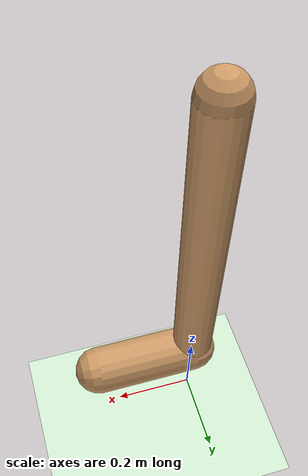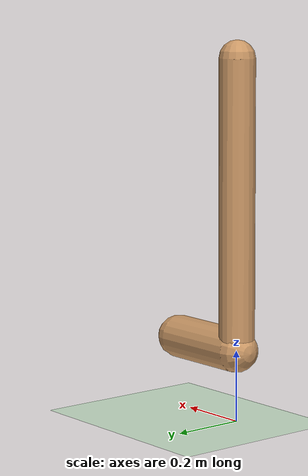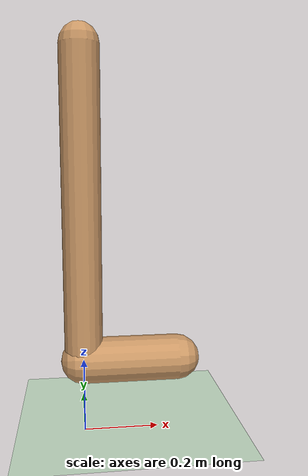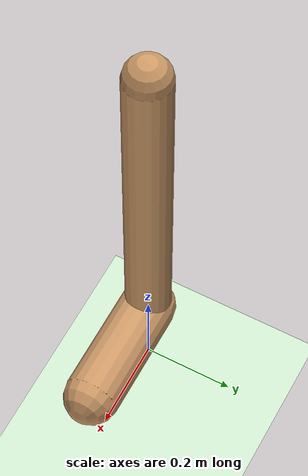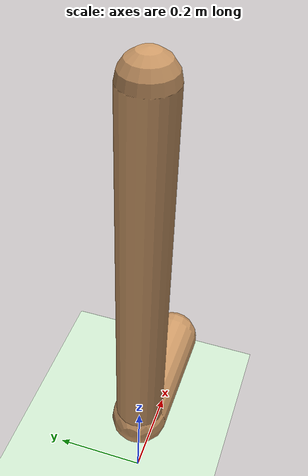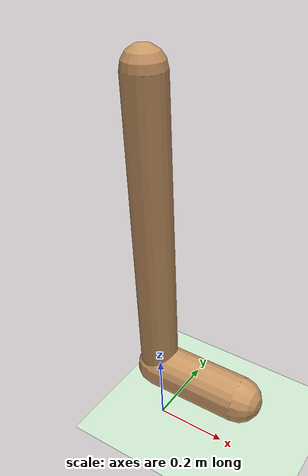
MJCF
<mujoco model="bipedal">
  <compiler angle="degree" coordinate="global" inertiafromgeom="true"/>
  <default>
    <joint armature="0.01" damping=".1" limited="true"/>
    <geom conaffinity="0" condim="3" contype="1" density="1000" friction=".7 .1 .1" rgba="0.8 0.6 .4 1"/>
  </default>
  <option integrator="RK4" timestep="0.002"/>
  <asset>
        <texture type="skybox" builtin="gradient" rgb1=".4 .5 .6" rgb2="0 0 0"
            width="30" height="30"/>
        <texture builtin="flat" height="1278" mark="cross" markrgb="1 1 1" name="texgeom" random="0.01" rgb1="0.8 0.6 0.4" rgb2="0.8 0.6 0.4" type="cube" width="127"/>
        <texture builtin="checker" height="30" name="texplane" rgb1="0 0 0" rgb2="0.8 0.8 0.8" type="2d" width="30"/>
        <material name="MatPlane" reflectance="0.274" shininess="1" specular="1" texrepeat="60 60" texture="texplane"/>
        <material name="geom" texture="texgeom" texuniform="true"/>
  </asset>
  <worldbody>
    <light cutoff="30" diffuse="1 1 1" dir="-0 0 -1.3" directional="true" exponent="1" pos="0 0 1.3" specular=".1 .1 .1"/>
    <geom conaffinity="1" condim="3" name="floor" pos="0 0 0" rgba="0.8 0.9 0.8 1" size="40 40 40" type="plane" material="MatPlane"/>

    <body name="hip" pos="0 0 1.0">
      <camera name="track" mode="trackcom" pos="0 -3 1" xyaxes="1 0 0 0 0 1"/>
      <joint armature="0" axis="1 0 0" damping="0" limited="false" name="rootx" pos="0 0 0" stiffness="0" type="slide"/>
      <joint armature="0" axis="0 0 1" damping="0" limited="false" name="rootz" pos="0 0 0" ref="1.25" stiffness="0" type="slide"/>
      <joint armature="0" axis="0 1 0" damping="0" limited="false" name="rooty" pos="0 0 1.0" stiffness="0" type="hinge"/>
      <geom friction="0.9" name="hip_geom" pos="0 0 1.0" size="0.03" type="sphere"/>

      <body name="leg_right" pos="0 0 1.00">
        <joint axis="0 -1 0" name="leg_joint" pos="0 0 1.0" range="-150 0" type="hinge"/>
        <geom friction="0.9" fromto="0 0 1.0 0 0 0.2" name="leg_geom" size="0.05" type="capsule"/>

          <body name="foot_right" pos="0 0 0.2">
            <joint axis="0 -1 0" name="foot_joint" pos="0 0 0.2" range="-50 50" type="hinge"/>
            <geom friction="0.9" fromto="0 0 0.2 0.25 0 0.2" name="foot_geom" size="0.06" type="capsule"/>

          </body>
      </body>
      <!-- copied and then replace thigh->thigh_left, leg->leg_left, foot->foot_right -->
      <body name="leg_left" pos="0 0 1.0">
        <joint axis="0 -1 0" name="leg_left_joint" pos="0 0 1.0" range="-150 0" type="hinge"/>
        <geom friction="0.9" fromto="0 0 1.0 0 0 0.2" name="leg_left_geom" rgba=".7 .3 .6 1" size="0.05" type="capsule"/>

          <body name="foot_left" pos="0 0 0.2">
            <joint axis="0 -1 0" name="foot_left_joint" pos="0 0 0.2" range="-50 50" type="hinge"/>
            <geom friction="0.9" fromto="0 0 0.2 0.25 0 0.2" name="foot_left_geom" rgba=".7 .3 .6 1" size="0.06" type="capsule"/>

          </body>
      </body>
    </body>
  </worldbody>

  <actuator>
    <motor ctrllimited="true" ctrlrange="-1.0 1.0" gear="150" joint="foot_joint"/>
    <motor ctrllimited="true" ctrlrange="-1.0 1.0" gear="150" joint="foot_left_joint"/>
  </actuator>

</mujoco>
